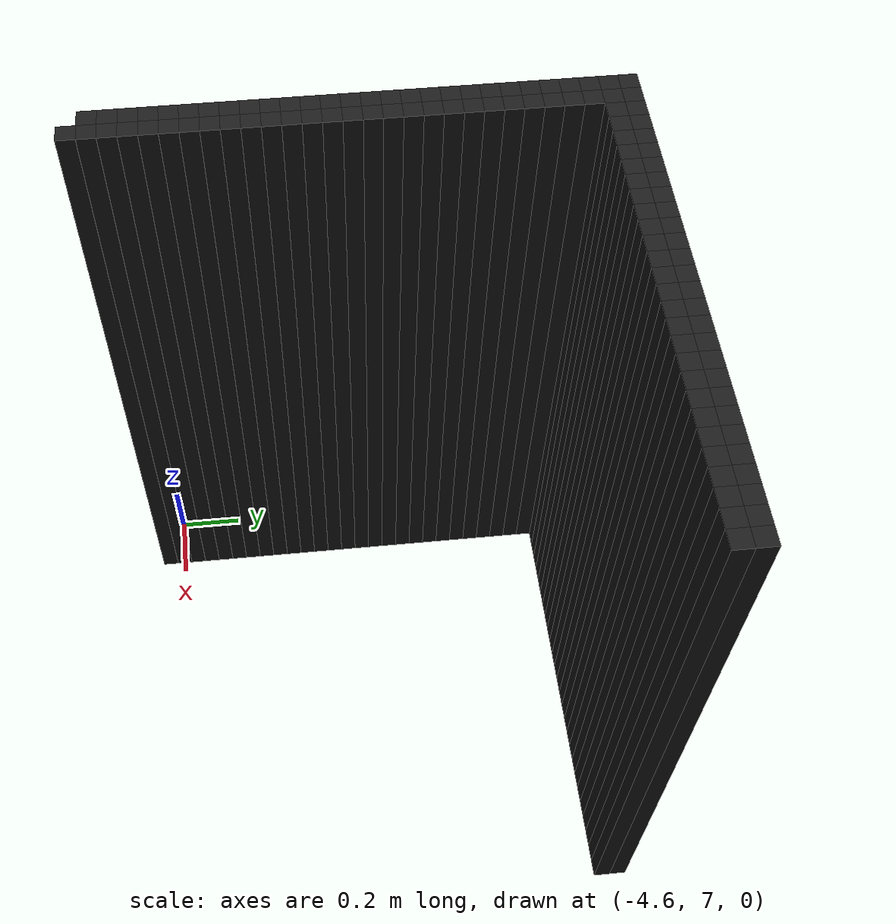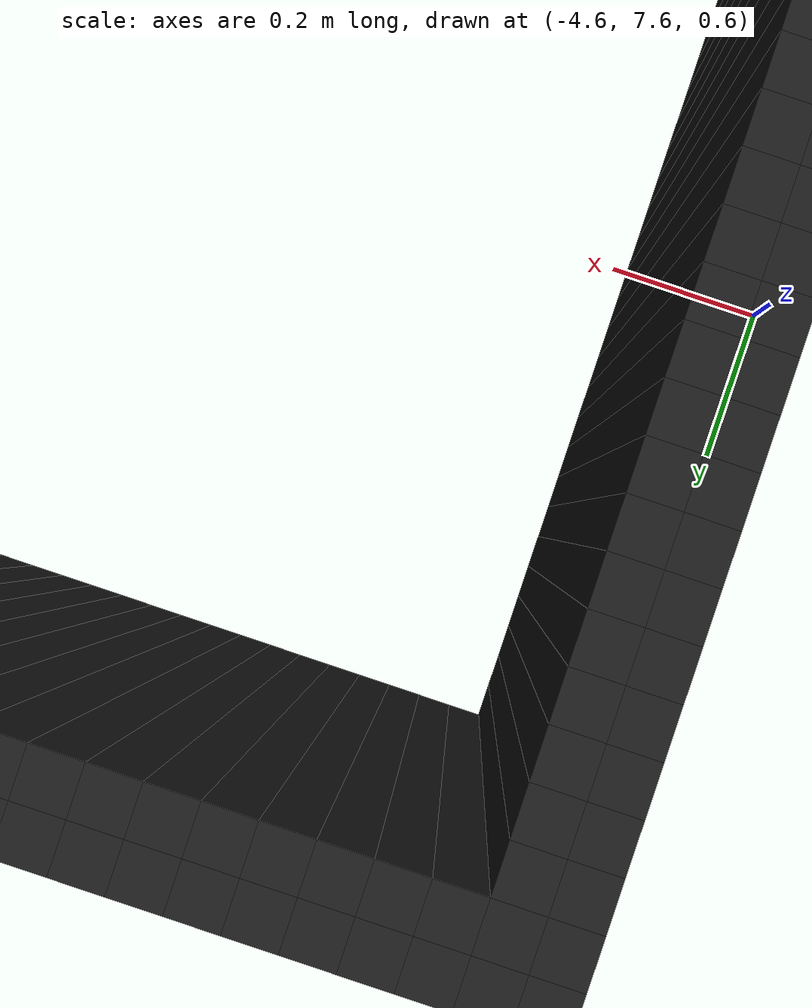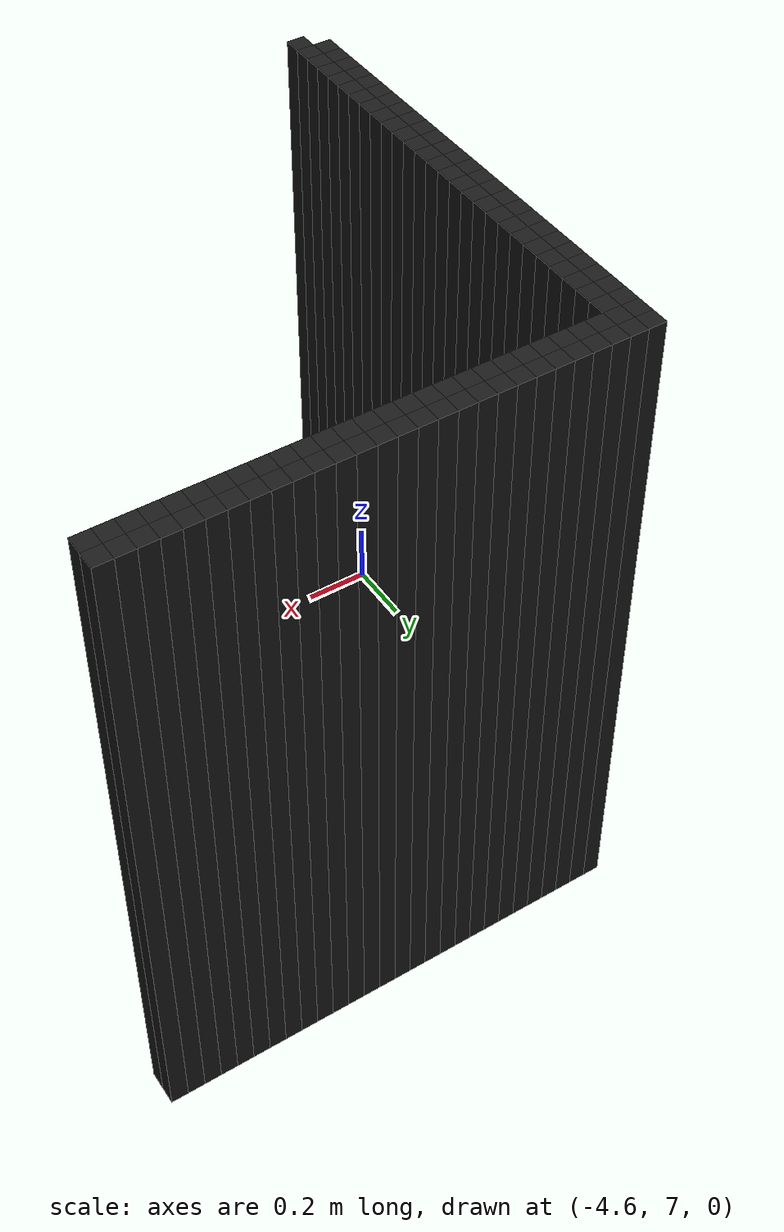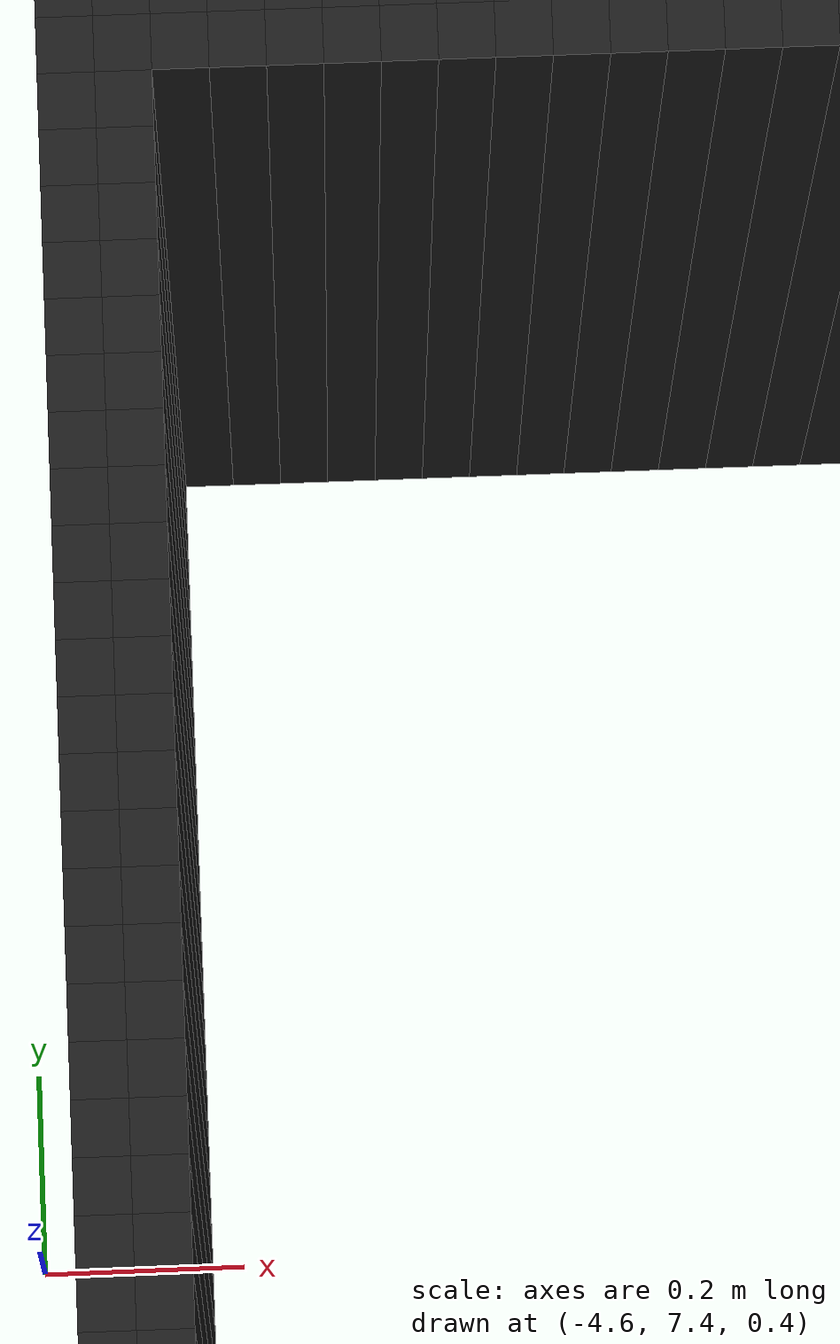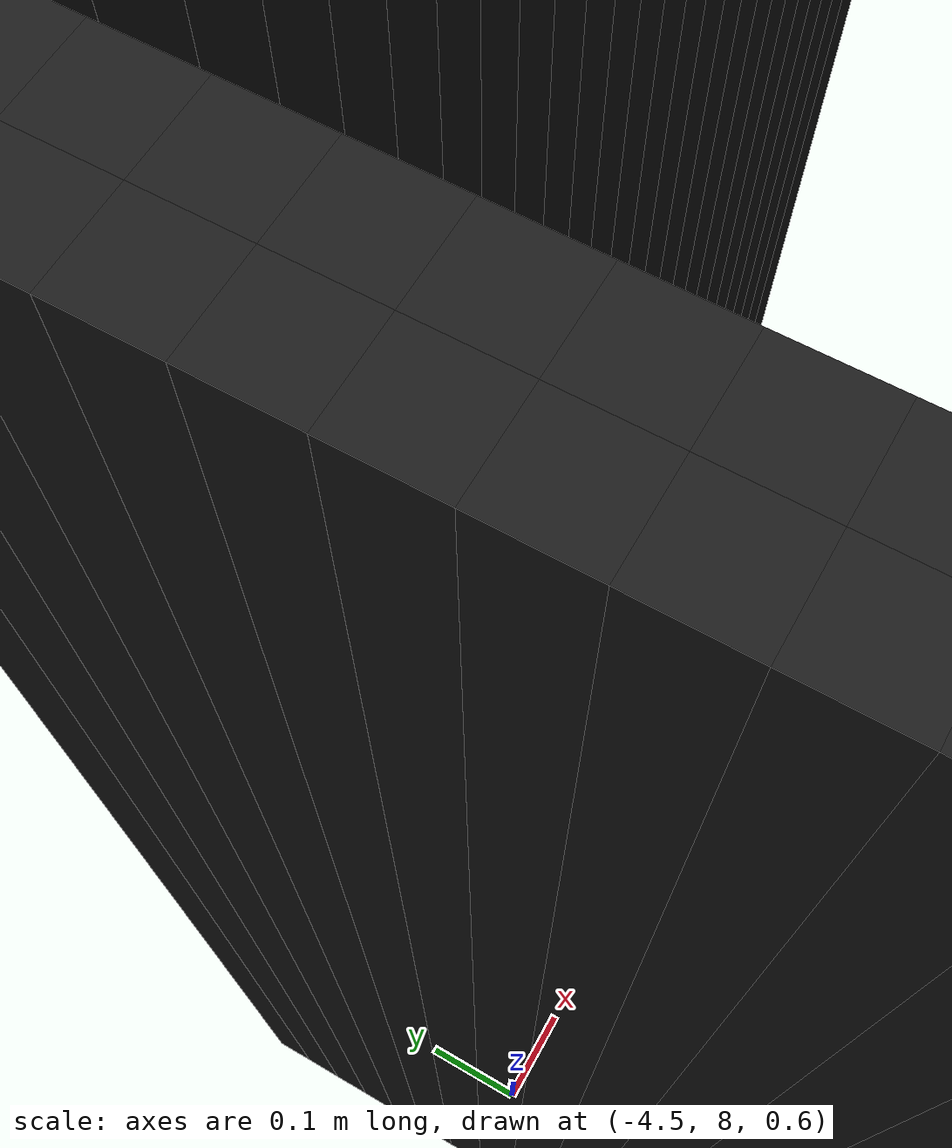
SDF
<sdf version="1.6">
 <model name="obstacle_0_0">
  <pose>-4.51 8.350000000000001 1.0 0 0 0</pose>
  <static>true</static>
  <link name="box_link">
   <collision name="box_collision"><geometry><box><size>0.05 0.05 2.0</size></box></geometry></collision>
   <visual name="box_visual">
    <geometry><box><size>0.05 0.05 2.0</size></box></geometry>
    <material><ambient>0 0 0 1</ambient><diffuse>0.1 0.1 0.1 1</diffuse></material>
   </visual>
  </link>
 </model>
 <model name="obstacle_1_0">
  <pose>-4.46 8.350000000000001 1.0 0 0 0</pose>
  <static>true</static>
  <link name="box_link">
   <collision name="box_collision"><geometry><box><size>0.05 0.05 2.0</size></box></geometry></collision>
   <visual name="box_visual">
    <geometry><box><size>0.05 0.05 2.0</size></box></geometry>
    <material><ambient>0 0 0 1</ambient><diffuse>0.1 0.1 0.1 1</diffuse></material>
   </visual>
  </link>
 </model>
 <model name="obstacle_2_0">
  <pose>-4.41 8.350000000000001 1.0 0 0 0</pose>
  <static>true</static>
  <link name="box_link">
   <collision name="box_collision"><geometry><box><size>0.05 0.05 2.0</size></box></geometry></collision>
   <visual name="box_visual">
    <geometry><box><size>0.05 0.05 2.0</size></box></geometry>
    <material><ambient>0 0 0 1</ambient><diffuse>0.1 0.1 0.1 1</diffuse></material>
   </visual>
  </link>
 </model>
 <model name="obstacle_3_0">
  <pose>-4.359999999999999 8.350000000000001 1.0 0 0 0</pose>
  <static>true</static>
  <link name="box_link">
   <collision name="box_collision"><geometry><box><size>0.05 0.05 2.0</size></box></geometry></collision>
   <visual name="box_visual">
    <geometry><box><size>0.05 0.05 2.0</size></box></geometry>
    <material><ambient>0 0 0 1</ambient><diffuse>0.1 0.1 0.1 1</diffuse></material>
   </visual>
  </link>
 </model>
 <model name="obstacle_4_0">
  <pose>-4.31 8.350000000000001 1.0 0 0 0</pose>
  <static>true</static>
  <link name="box_link">
   <collision name="box_collision"><geometry><box><size>0.05 0.05 2.0</size></box></geometry></collision>
   <visual name="box_visual">
    <geometry><box><size>0.05 0.05 2.0</size></box></geometry>
    <material><ambient>0 0 0 1</ambient><diffuse>0.1 0.1 0.1 1</diffuse></material>
   </visual>
  </link>
 </model>
 <model name="obstacle_5_0">
  <pose>-4.26 8.350000000000001 1.0 0 0 0</pose>
  <static>true</static>
  <link name="box_link">
   <collision name="box_collision"><geometry><box><size>0.05 0.05 2.0</size></box></geometry></collision>
   <visual name="box_visual">
    <geometry><box><size>0.05 0.05 2.0</size></box></geometry>
    <material><ambient>0 0 0 1</ambient><diffuse>0.1 0.1 0.1 1</diffuse></material>
   </visual>
  </link>
 </model>
 <model name="obstacle_6_0">
  <pose>-4.21 8.350000000000001 1.0 0 0 0</pose>
  <static>true</static>
  <link name="box_link">
   <collision name="box_collision"><geometry><box><size>0.05 0.05 2.0</size></box></geometry></collision>
   <visual name="box_visual">
    <geometry><box><size>0.05 0.05 2.0</size></box></geometry>
    <material><ambient>0 0 0 1</ambient><diffuse>0.1 0.1 0.1 1</diffuse></material>
   </visual>
  </link>
 </model>
 <model name="obstacle_7_0">
  <pose>-4.16 8.350000000000001 1.0 0 0 0</pose>
  <static>true</static>
  <link name="box_link">
   <collision name="box_collision"><geometry><box><size>0.05 0.05 2.0</size></box></geometry></collision>
   <visual name="box_visual">
    <geometry><box><size>0.05 0.05 2.0</size></box></geometry>
    <material><ambient>0 0 0 1</ambient><diffuse>0.1 0.1 0.1 1</diffuse></material>
   </visual>
  </link>
 </model>
 <model name="obstacle_8_0">
  <pose>-4.109999999999999 8.350000000000001 1.0 0 0 0</pose>
  <static>true</static>
  <link name="box_link">
   <collision name="box_collision"><geometry><box><size>0.05 0.05 2.0</size></box></geometry></collision>
   <visual name="box_visual">
    <geometry><box><size>0.05 0.05 2.0</size></box></geometry>
    <material><ambient>0 0 0 1</ambient><diffuse>0.1 0.1 0.1 1</diffuse></material>
   </visual>
  </link>
 </model>
 <model name="obstacle_9_0">
  <pose>-4.06 8.350000000000001 1.0 0 0 0</pose>
  <static>true</static>
  <link name="box_link">
   <collision name="box_collision"><geometry><box><size>0.05 0.05 2.0</size></box></geometry></collision>
   <visual name="box_visual">
    <geometry><box><size>0.05 0.05 2.0</size></box></geometry>
    <material><ambient>0 0 0 1</ambient><diffuse>0.1 0.1 0.1 1</diffuse></material>
   </visual>
  </link>
 </model>
 <model name="obstacle_10_0">
  <pose>-4.01 8.350000000000001 1.0 0 0 0</pose>
  <static>true</static>
  <link name="box_link">
   <collision name="box_collision"><geometry><box><size>0.05 0.05 2.0</size></box></geometry></collision>
   <visual name="box_visual">
    <geometry><box><size>0.05 0.05 2.0</size></box></geometry>
    <material><ambient>0 0 0 1</ambient><diffuse>0.1 0.1 0.1 1</diffuse></material>
   </visual>
  </link>
 </model>
 <model name="obstacle_11_0">
  <pose>-3.96 8.350000000000001 1.0 0 0 0</pose>
  <static>true</static>
  <link name="box_link">
   <collision name="box_collision"><geometry><box><size>0.05 0.05 2.0</size></box></geometry></collision>
   <visual name="box_visual">
    <geometry><box><size>0.05 0.05 2.0</size></box></geometry>
    <material><ambient>0 0 0 1</ambient><diffuse>0.1 0.1 0.1 1</diffuse></material>
   </visual>
  </link>
 </model>
 <model name="obstacle_12_0">
  <pose>-3.9099999999999997 8.350000000000001 1.0 0 0 0</pose>
  <static>true</static>
  <link name="box_link">
   <collision name="box_collision"><geometry><box><size>0.05 0.05 2.0</size></box></geometry></collision>
   <visual name="box_visual">
    <geometry><box><size>0.05 0.05 2.0</size></box></geometry>
    <material><ambient>0 0 0 1</ambient><diffuse>0.1 0.1 0.1 1</diffuse></material>
   </visual>
  </link>
 </model>
 <model name="obstacle_13_0">
  <pose>-3.86 8.350000000000001 1.0 0 0 0</pose>
  <static>true</static>
  <link name="box_link">
   <collision name="box_collision"><geometry><box><size>0.05 0.05 2.0</size></box></geometry></collision>
   <visual name="box_visual">
    <geometry><box><size>0.05 0.05 2.0</size></box></geometry>
    <material><ambient>0 0 0 1</ambient><diffuse>0.1 0.1 0.1 1</diffuse></material>
   </visual>
  </link>
 </model>
 <model name="obstacle_14_0">
  <pose>-3.8099999999999996 8.350000000000001 1.0 0 0 0</pose>
  <static>true</static>
  <link name="box_link">
   <collision name="box_collision"><geometry><box><size>0.05 0.05 2.0</size></box></geometry></collision>
   <visual name="box_visual">
    <geometry><box><size>0.05 0.05 2.0</size></box></geometry>
    <material><ambient>0 0 0 1</ambient><diffuse>0.1 0.1 0.1 1</diffuse></material>
   </visual>
  </link>
 </model>
 <model name="obstacle_15_0">
  <pose>-3.76 8.350000000000001 1.0 0 0 0</pose>
  <static>true</static>
  <link name="box_link">
   <collision name="box_collision"><geometry><box><size>0.05 0.05 2.0</size></box></geometry></collision>
   <visual name="box_visual">
    <geometry><box><size>0.05 0.05 2.0</size></box></geometry>
    <material><ambient>0 0 0 1</ambient><diffuse>0.1 0.1 0.1 1</diffuse></material>
   </visual>
  </link>
 </model>
 <model name="obstacle_16_0">
  <pose>-3.71 8.350000000000001 1.0 0 0 0</pose>
  <static>true</static>
  <link name="box_link">
   <collision name="box_collision"><geometry><box><size>0.05 0.05 2.0</size></box></geometry></collision>
   <visual name="box_visual">
    <geometry><box><size>0.05 0.05 2.0</size></box></geometry>
    <material><ambient>0 0 0 1</ambient><diffuse>0.1 0.1 0.1 1</diffuse></material>
   </visual>
  </link>
 </model>
 <model name="obstacle_17_0">
  <pose>-3.6599999999999997 8.350000000000001 1.0 0 0 0</pose>
  <static>true</static>
  <link name="box_link">
   <collision name="box_collision"><geometry><box><size>0.05 0.05 2.0</size></box></geometry></collision>
   <visual name="box_visual">
    <geometry><box><size>0.05 0.05 2.0</size></box></geometry>
    <material><ambient>0 0 0 1</ambient><diffuse>0.1 0.1 0.1 1</diffuse></material>
   </visual>
  </link>
 </model>
 <model name="obstacle_18_0">
  <pose>-3.61 8.350000000000001 1.0 0 0 0</pose>
  <static>true</static>
  <link name="box_link">
   <collision name="box_collision"><geometry><box><size>0.05 0.05 2.0</size></box></geometry></collision>
   <visual name="box_visual">
    <geometry><box><size>0.05 0.05 2.0</size></box></geometry>
    <material><ambient>0 0 0 1</ambient><diffuse>0.1 0.1 0.1 1</diffuse></material>
   </visual>
  </link>
 </model>
 <model name="obstacle_19_0">
  <pose>-3.5599999999999996 8.350000000000001 1.0 0 0 0</pose>
  <static>true</static>
  <link name="box_link">
   <collision name="box_collision"><geometry><box><size>0.05 0.05 2.0</size></box></geometry></collision>
   <visual name="box_visual">
    <geometry><box><size>0.05 0.05 2.0</size></box></geometry>
    <material><ambient>0 0 0 1</ambient><diffuse>0.1 0.1 0.1 1</diffuse></material>
   </visual>
  </link>
 </model>
 <model name="obstacle_20_0">
  <pose>-3.51 8.350000000000001 1.0 0 0 0</pose>
  <static>true</static>
  <link name="box_link">
   <collision name="box_collision"><geometry><box><size>0.05 0.05 2.0</size></box></geometry></collision>
   <visual name="box_visual">
    <geometry><box><size>0.05 0.05 2.0</size></box></geometry>
    <material><ambient>0 0 0 1</ambient><diffuse>0.1 0.1 0.1 1</diffuse></material>
   </visual>
  </link>
 </model>
 <model name="obstacle_21_0">
  <pose>-3.46 8.350000000000001 1.0 0 0 0</pose>
  <static>true</static>
  <link name="box_link">
   <collision name="box_collision"><geometry><box><size>0.05 0.05 2.0</size></box></geometry></collision>
   <visual name="box_visual">
    <geometry><box><size>0.05 0.05 2.0</size></box></geometry>
    <material><ambient>0 0 0 1</ambient><diffuse>0.1 0.1 0.1 1</diffuse></material>
   </visual>
  </link>
 </model>
 <model name="obstacle_22_0">
  <pose>-3.4099999999999997 8.350000000000001 1.0 0 0 0</pose>
  <static>true</static>
  <link name="box_link">
   <collision name="box_collision"><geometry><box><size>0.05 0.05 2.0</size></box></geometry></collision>
   <visual name="box_visual">
    <geometry><box><size>0.05 0.05 2.0</size></box></geometry>
    <material><ambient>0 0 0 1</ambient><diffuse>0.1 0.1 0.1 1</diffuse></material>
   </visual>
  </link>
 </model>
 <model name="obstacle_23_0">
  <pose>-3.3599999999999994 8.350000000000001 1.0 0 0 0</pose>
  <static>true</static>
  <link name="box_link">
   <collision name="box_collision"><geometry><box><size>0.05 0.05 2.0</size></box></geometry></collision>
   <visual name="box_visual">
    <geometry><box><size>0.05 0.05 2.0</size></box></geometry>
    <material><ambient>0 0 0 1</ambient><diffuse>0.1 0.1 0.1 1</diffuse></material>
   </visual>
  </link>
 </model>
 <model name="obstacle_24_0">
  <pose>-3.3099999999999996 8.350000000000001 1.0 0 0 0</pose>
  <static>true</static>
  <link name="box_link">
   <collision name="box_collision"><geometry><box><size>0.05 0.05 2.0</size></box></geometry></collision>
   <visual name="box_visual">
    <geometry><box><size>0.05 0.05 2.0</size></box></geometry>
    <material><ambient>0 0 0 1</ambient><diffuse>0.1 0.1 0.1 1</diffuse></material>
   </visual>
  </link>
 </model>
 <model name="obstacle_25_0">
  <pose>-3.26 8.350000000000001 1.0 0 0 0</pose>
  <static>true</static>
  <link name="box_link">
   <collision name="box_collision"><geometry><box><size>0.05 0.05 2.0</size></box></geometry></collision>
   <visual name="box_visual">
    <geometry><box><size>0.05 0.05 2.0</size></box></geometry>
    <material><ambient>0 0 0 1</ambient><diffuse>0.1 0.1 0.1 1</diffuse></material>
   </visual>
  </link>
 </model>
 <model name="obstacle_26_0">
  <pose>-3.21 8.350000000000001 1.0 0 0 0</pose>
  <static>true</static>
  <link name="box_link">
   <collision name="box_collision"><geometry><box><size>0.05 0.05 2.0</size></box></geometry></collision>
   <visual name="box_visual">
    <geometry><box><size>0.05 0.05 2.0</size></box></geometry>
    <material><ambient>0 0 0 1</ambient><diffuse>0.1 0.1 0.1 1</diffuse></material>
   </visual>
  </link>
 </model>
 <model name="obstacle_27_0">
  <pose>-3.1599999999999997 8.350000000000001 1.0 0 0 0</pose>
  <static>true</static>
  <link name="box_link">
   <collision name="box_collision"><geometry><box><size>0.05 0.05 2.0</size></box></geometry></collision>
   <visual name="box_visual">
    <geometry><box><size>0.05 0.05 2.0</size></box></geometry>
    <material><ambient>0 0 0 1</ambient><diffuse>0.1 0.1 0.1 1</diffuse></material>
   </visual>
  </link>
 </model>
 <model name="obstacle_0_1">
  <pose>-4.51 8.3 1.0 0 0 0</pose>
  <static>true</static>
  <link name="box_link">
   <collision name="box_collision"><geometry><box><size>0.05 0.05 2.0</size></box></geometry></collision>
   <visual name="box_visual">
    <geometry><box><size>0.05 0.05 2.0</size></box></geometry>
    <material><ambient>0 0 0 1</ambient><diffuse>0.1 0.1 0.1 1</diffuse></material>
   </visual>
  </link>
 </model>
 <model name="obstacle_1_1">
  <pose>-4.46 8.3 1.0 0 0 0</pose>
  <static>true</static>
  <link name="box_link">
   <collision name="box_collision"><geometry><box><size>0.05 0.05 2.0</size></box></geometry></collision>
   <visual name="box_visual">
    <geometry><box><size>0.05 0.05 2.0</size></box></geometry>
    <material><ambient>0 0 0 1</ambient><diffuse>0.1 0.1 0.1 1</diffuse></material>
   </visual>
  </link>
 </model>
 <model name="obstacle_2_1">
  <pose>-4.41 8.3 1.0 0 0 0</pose>
  <static>true</static>
  <link name="box_link">
   <collision name="box_collision"><geometry><box><size>0.05 0.05 2.0</size></box></geometry></collision>
   <visual name="box_visual">
    <geometry><box><size>0.05 0.05 2.0</size></box></geometry>
    <material><ambient>0 0 0 1</ambient><diffuse>0.1 0.1 0.1 1</diffuse></material>
   </visual>
  </link>
 </model>
 <model name="obstacle_3_1">
  <pose>-4.359999999999999 8.3 1.0 0 0 0</pose>
  <static>true</static>
  <link name="box_link">
   <collision name="box_collision"><geometry><box><size>0.05 0.05 2.0</size></box></geometry></collision>
   <visual name="box_visual">
    <geometry><box><size>0.05 0.05 2.0</size></box></geometry>
    <material><ambient>0 0 0 1</ambient><diffuse>0.1 0.1 0.1 1</diffuse></material>
   </visual>
  </link>
 </model>
 <model name="obstacle_4_1">
  <pose>-4.31 8.3 1.0 0 0 0</pose>
  <static>true</static>
  <link name="box_link">
   <collision name="box_collision"><geometry><box><size>0.05 0.05 2.0</size></box></geometry></collision>
   <visual name="box_visual">
    <geometry><box><size>0.05 0.05 2.0</size></box></geometry>
    <material><ambient>0 0 0 1</ambient><diffuse>0.1 0.1 0.1 1</diffuse></material>
   </visual>
  </link>
 </model>
 <model name="obstacle_5_1">
  <pose>-4.26 8.3 1.0 0 0 0</pose>
  <static>true</static>
  <link name="box_link">
   <collision name="box_collision"><geometry><box><size>0.05 0.05 2.0</size></box></geometry></collision>
   <visual name="box_visual">
    <geometry><box><size>0.05 0.05 2.0</size></box></geometry>
    <material><ambient>0 0 0 1</ambient><diffuse>0.1 0.1 0.1 1</diffuse></material>
   </visual>
  </link>
 </model>
 <model name="obstacle_6_1">
  <pose>-4.21 8.3 1.0 0 0 0</pose>
  <static>true</static>
  <link name="box_link">
   <collision name="box_collision"><geometry><box><size>0.05 0.05 2.0</size></box></geometry></collision>
   <visual name="box_visual">
    <geometry><box><size>0.05 0.05 2.0</size></box></geometry>
    <material><ambient>0 0 0 1</ambient><diffuse>0.1 0.1 0.1 1</diffuse></material>
   </visual>
  </link>
 </model>
 <model name="obstacle_7_1">
  <pose>-4.16 8.3 1.0 0 0 0</pose>
  <static>true</static>
  <link name="box_link">
   <collision name="box_collision"><geometry><box><size>0.05 0.05 2.0</size></box></geometry></collision>
   <visual name="box_visual">
    <geometry><box><size>0.05 0.05 2.0</size></box></geometry>
    <material><ambient>0 0 0 1</ambient><diffuse>0.1 0.1 0.1 1</diffuse></material>
   </visual>
  </link>
 </model>
 <model name="obstacle_8_1">
  <pose>-4.109999999999999 8.3 1.0 0 0 0</pose>
  <static>true</static>
  <link name="box_link">
   <collision name="box_collision"><geometry><box><size>0.05 0.05 2.0</size></box></geometry></collision>
   <visual name="box_visual">
    <geometry><box><size>0.05 0.05 2.0</size></box></geometry>
    <material><ambient>0 0 0 1</ambient><diffuse>0.1 0.1 0.1 1</diffuse></material>
   </visual>
  </link>
 </model>
 <model name="obstacle_9_1">
  <pose>-4.06 8.3 1.0 0 0 0</pose>
  <static>true</static>
  <link name="box_link">
   <collision name="box_collision"><geometry><box><size>0.05 0.05 2.0</size></box></geometry></collision>
   <visual name="box_visual">
    <geometry><box><size>0.05 0.05 2.0</size></box></geometry>
    <material><ambient>0 0 0 1</ambient><diffuse>0.1 0.1 0.1 1</diffuse></material>
   </visual>
  </link>
 </model>
 <model name="obstacle_10_1">
  <pose>-4.01 8.3 1.0 0 0 0</pose>
  <static>true</static>
  <link name="box_link">
   <collision name="box_collision"><geometry><box><size>0.05 0.05 2.0</size></box></geometry></collision>
   <visual name="box_visual">
    <geometry><box><size>0.05 0.05 2.0</size></box></geometry>
    <material><ambient>0 0 0 1</ambient><diffuse>0.1 0.1 0.1 1</diffuse></material>
   </visual>
  </link>
 </model>
 <model name="obstacle_11_1">
  <pose>-3.96 8.3 1.0 0 0 0</pose>
  <static>true</static>
  <link name="box_link">
   <collision name="box_collision"><geometry><box><size>0.05 0.05 2.0</size></box></geometry></collision>
   <visual name="box_visual">
    <geometry><box><size>0.05 0.05 2.0</size></box></geometry>
    <material><ambient>0 0 0 1</ambient><diffuse>0.1 0.1 0.1 1</diffuse></material>
   </visual>
  </link>
 </model>
 <model name="obstacle_12_1">
  <pose>-3.9099999999999997 8.3 1.0 0 0 0</pose>
  <static>true</static>
  <link name="box_link">
   <collision name="box_collision"><geometry><box><size>0.05 0.05 2.0</size></box></geometry></collision>
   <visual name="box_visual">
    <geometry><box><size>0.05 0.05 2.0</size></box></geometry>
    <material><ambient>0 0 0 1</ambient><diffuse>0.1 0.1 0.1 1</diffuse></material>
   </visual>
  </link>
 </model>
 <model name="obstacle_13_1">
  <pose>-3.86 8.3 1.0 0 0 0</pose>
  <static>true</static>
  <link name="box_link">
   <collision name="box_collision"><geometry><box><size>0.05 0.05 2.0</size></box></geometry></collision>
   <visual name="box_visual">
    <geometry><box><size>0.05 0.05 2.0</size></box></geometry>
    <material><ambient>0 0 0 1</ambient><diffuse>0.1 0.1 0.1 1</diffuse></material>
   </visual>
  </link>
 </model>
 <model name="obstacle_14_1">
  <pose>-3.8099999999999996 8.3 1.0 0 0 0</pose>
  <static>true</static>
  <link name="box_link">
   <collision name="box_collision"><geometry><box><size>0.05 0.05 2.0</size></box></geometry></collision>
   <visual name="box_visual">
    <geometry><box><size>0.05 0.05 2.0</size></box></geometry>
    <material><ambient>0 0 0 1</ambient><diffuse>0.1 0.1 0.1 1</diffuse></material>
   </visual>
  </link>
 </model>
 <model name="obstacle_15_1">
  <pose>-3.76 8.3 1.0 0 0 0</pose>
  <static>true</static>
  <link name="box_link">
   <collision name="box_collision"><geometry><box><size>0.05 0.05 2.0</size></box></geometry></collision>
   <visual name="box_visual">
    <geometry><box><size>0.05 0.05 2.0</size></box></geometry>
    <material><ambient>0 0 0 1</ambient><diffuse>0.1 0.1 0.1 1</diffuse></material>
   </visual>
  </link>
 </model>
 <model name="obstacle_16_1">
  <pose>-3.71 8.3 1.0 0 0 0</pose>
  <static>true</static>
  <link name="box_link">
   <collision name="box_collision"><geometry><box><size>0.05 0.05 2.0</size></box></geometry></collision>
   <visual name="box_visual">
    <geometry><box><size>0.05 0.05 2.0</size></box></geometry>
    <material><ambient>0 0 0 1</ambient><diffuse>0.1 0.1 0.1 1</diffuse></material>
   </visual>
  </link>
 </model>
 <model name="obstacle_17_1">
  <pose>-3.6599999999999997 8.3 1.0 0 0 0</pose>
  <static>true</static>
  <link name="box_link">
   <collision name="box_collision"><geometry><box><size>0.05 0.05 2.0</size></box></geometry></collision>
   <visual name="box_visual">
    <geometry><box><size>0.05 0.05 2.0</size></box></geometry>
    <material><ambient>0 0 0 1</ambient><diffuse>0.1 0.1 0.1 1</diffuse></material>
   </visual>
  </link>
 </model>
 <model name="obstacle_18_1">
  <pose>-3.61 8.3 1.0 0 0 0</pose>
  <static>true</static>
  <link name="box_link">
   <collision name="box_collision"><geometry><box><size>0.05 0.05 2.0</size></box></geometry></collision>
   <visual name="box_visual">
    <geometry><box><size>0.05 0.05 2.0</size></box></geometry>
    <material><ambient>0 0 0 1</ambient><diffuse>0.1 0.1 0.1 1</diffuse></material>
   </visual>
  </link>
 </model>
 <model name="obstacle_19_1">
  <pose>-3.5599999999999996 8.3 1.0 0 0 0</pose>
  <static>true</static>
  <link name="box_link">
   <collision name="box_collision"><geometry><box><size>0.05 0.05 2.0</size></box></geometry></collision>
   <visual name="box_visual">
    <geometry><box><size>0.05 0.05 2.0</size></box></geometry>
    <material><ambient>0 0 0 1</ambient><diffuse>0.1 0.1 0.1 1</diffuse></material>
   </visual>
  </link>
 </model>
 <model name="obstacle_20_1">
  <pose>-3.51 8.3 1.0 0 0 0</pose>
  <static>true</static>
  <link name="box_link">
   <collision name="box_collision"><geometry><box><size>0.05 0.05 2.0</size></box></geometry></collision>
   <visual name="box_visual">
    <geometry><box><size>0.05 0.05 2.0</size></box></geometry>
    <material><ambient>0 0 0 1</ambient><diffuse>0.1 0.1 0.1 1</diffuse></material>
   </visual>
  </link>
 </model>
 <model name="obstacle_21_1">
  <pose>-3.46 8.3 1.0 0 0 0</pose>
  <static>true</static>
  <link name="box_link">
   <collision name="box_collision"><geometry><box><size>0.05 0.05 2.0</size></box></geometry></collision>
   <visual name="box_visual">
    <geometry><box><size>0.05 0.05 2.0</size></box></geometry>
    <material><ambient>0 0 0 1</ambient><diffuse>0.1 0.1 0.1 1</diffuse></material>
   </visual>
  </link>
 </model>
 <model name="obstacle_22_1">
  <pose>-3.4099999999999997 8.3 1.0 0 0 0</pose>
  <static>true</static>
  <link name="box_link">
   <collision name="box_collision"><geometry><box><size>0.05 0.05 2.0</size></box></geometry></collision>
   <visual name="box_visual">
    <geometry><box><size>0.05 0.05 2.0</size></box></geometry>
    <material><ambient>0 0 0 1</ambient><diffuse>0.1 0.1 0.1 1</diffuse></material>
   </visual>
  </link>
 </model>
 <model name="obstacle_23_1">
  <pose>-3.3599999999999994 8.3 1.0 0 0 0</pose>
  <static>true</static>
  <link name="box_link">
   <collision name="box_collision"><geometry><box><size>0.05 0.05 2.0</size></box></geometry></collision>
   <visual name="box_visual">
    <geometry><box><size>0.05 0.05 2.0</size></box></geometry>
    <material><ambient>0 0 0 1</ambient><diffuse>0.1 0.1 0.1 1</diffuse></material>
   </visual>
  </link>
 </model>
 <model name="obstacle_24_1">
  <pose>-3.3099999999999996 8.3 1.0 0 0 0</pose>
  <static>true</static>
  <link name="box_link">
   <collision name="box_collision"><geometry><box><size>0.05 0.05 2.0</size></box></geometry></collision>
   <visual name="box_visual">
    <geometry><box><size>0.05 0.05 2.0</size></box></geometry>
    <material><ambient>0 0 0 1</ambient><diffuse>0.1 0.1 0.1 1</diffuse></material>
   </visual>
  </link>
 </model>
 <model name="obstacle_25_1">
  <pose>-3.26 8.3 1.0 0 0 0</pose>
  <static>true</static>
  <link name="box_link">
   <collision name="box_collision"><geometry><box><size>0.05 0.05 2.0</size></box></geometry></collision>
   <visual name="box_visual">
    <geometry><box><size>0.05 0.05 2.0</size></box></geometry>
    <material><ambient>0 0 0 1</ambient><diffuse>0.1 0.1 0.1 1</diffuse></material>
   </visual>
  </link>
 </model>
 <model name="obstacle_26_1">
  <pose>-3.21 8.3 1.0 0 0 0</pose>
  <static>true</static>
  <link name="box_link">
   <collision name="box_collision"><geometry><box><size>0.05 0.05 2.0</size></box></geometry></collision>
   <visual name="box_visual">
    <geometry><box><size>0.05 0.05 2.0</size></box></geometry>
    <material><ambient>0 0 0 1</ambient><diffuse>0.1 0.1 0.1 1</diffuse></material>
   </visual>
  </link>
 </model>
 <model name="obstacle_27_1">
  <pose>-3.1599999999999997 8.3 1.0 0 0 0</pose>
  <static>true</static>
  <link name="box_link">
   <collision name="box_collision"><geometry><box><size>0.05 0.05 2.0</size></box></geometry></collision>
   <visual name="box_visual">
    <geometry><box><size>0.05 0.05 2.0</size></box></geometry>
    <material><ambient>0 0 0 1</ambient><diffuse>0.1 0.1 0.1 1</diffuse></material>
   </visual>
  </link>
 </model>
 <model name="obstacle_0_2">
  <pose>-4.51 8.25 1.0 0 0 0</pose>
  <static>true</static>
  <link name="box_link">
   <collision name="box_collision"><geometry><box><size>0.05 0.05 2.0</size></box></geometry></collision>
   <visual name="box_visual">
    <geometry><box><size>0.05 0.05 2.0</size></box></geometry>
    <material><ambient>0 0 0 1</ambient><diffuse>0.1 0.1 0.1 1</diffuse></material>
   </visual>
  </link>
 </model>
 <model name="obstacle_1_2">
  <pose>-4.46 8.25 1.0 0 0 0</pose>
  <static>true</static>
  <link name="box_link">
   <collision name="box_collision"><geometry><box><size>0.05 0.05 2.0</size></box></geometry></collision>
   <visual name="box_visual">
    <geometry><box><size>0.05 0.05 2.0</size></box></geometry>
    <material><ambient>0 0 0 1</ambient><diffuse>0.1 0.1 0.1 1</diffuse></material>
   </visual>
  </link>
 </model>
 <model name="obstacle_0_3">
  <pose>-4.51 8.2 1.0 0 0 0</pose>
  <static>true</static>
  <link name="box_link">
   <collision name="box_collision"><geometry><box><size>0.05 0.05 2.0</size></box></geometry></collision>
   <visual name="box_visual">
    <geometry><box><size>0.05 0.05 2.0</size></box></geometry>
    <material><ambient>0 0 0 1</ambient><diffuse>0.1 0.1 0.1 1</diffuse></material>
   </visual>
  </link>
 </model>
 <model name="obstacle_1_3">
  <pose>-4.46 8.2 1.0 0 0 0</pose>
  <static>true</static>
  <link name="box_link">
   <collision name="box_collision"><geometry><box><size>0.05 0.05 2.0</size></box></geometry></collision>
   <visual name="box_visual">
    <geometry><box><size>0.05 0.05 2.0</size></box></geometry>
    <material><ambient>0 0 0 1</ambient><diffuse>0.1 0.1 0.1 1</diffuse></material>
   </visual>
  </link>
 </model>
 <model name="obstacle_0_4">
  <pose>-4.51 8.150000000000002 1.0 0 0 0</pose>
  <static>true</static>
  <link name="box_link">
   <collision name="box_collision"><geometry><box><size>0.05 0.05 2.0</size></box></geometry></collision>
   <visual name="box_visual">
    <geometry><box><size>0.05 0.05 2.0</size></box></geometry>
    <material><ambient>0 0 0 1</ambient><diffuse>0.1 0.1 0.1 1</diffuse></material>
   </visual>
  </link>
 </model>
 <model name="obstacle_1_4">
  <pose>-4.46 8.150000000000002 1.0 0 0 0</pose>
  <static>true</static>
  <link name="box_link">
   <collision name="box_collision"><geometry><box><size>0.05 0.05 2.0</size></box></geometry></collision>
   <visual name="box_visual">
    <geometry><box><size>0.05 0.05 2.0</size></box></geometry>
    <material><ambient>0 0 0 1</ambient><diffuse>0.1 0.1 0.1 1</diffuse></material>
   </visual>
  </link>
 </model>
 <model name="obstacle_0_5">
  <pose>-4.51 8.100000000000001 1.0 0 0 0</pose>
  <static>true</static>
  <link name="box_link">
   <collision name="box_collision"><geometry><box><size>0.05 0.05 2.0</size></box></geometry></collision>
   <visual name="box_visual">
    <geometry><box><size>0.05 0.05 2.0</size></box></geometry>
    <material><ambient>0 0 0 1</ambient><diffuse>0.1 0.1 0.1 1</diffuse></material>
   </visual>
  </link>
 </model>
 <model name="obstacle_1_5">
  <pose>-4.46 8.100000000000001 1.0 0 0 0</pose>
  <static>true</static>
  <link name="box_link">
   <collision name="box_collision"><geometry><box><size>0.05 0.05 2.0</size></box></geometry></collision>
   <visual name="box_visual">
    <geometry><box><size>0.05 0.05 2.0</size></box></geometry>
    <material><ambient>0 0 0 1</ambient><diffuse>0.1 0.1 0.1 1</diffuse></material>
   </visual>
  </link>
 </model>
 <model name="obstacle_0_6">
  <pose>-4.51 8.05 1.0 0 0 0</pose>
  <static>true</static>
  <link name="box_link">
   <collision name="box_collision"><geometry><box><size>0.05 0.05 2.0</size></box></geometry></collision>
   <visual name="box_visual">
    <geometry><box><size>0.05 0.05 2.0</size></box></geometry>
    <material><ambient>0 0 0 1</ambient><diffuse>0.1 0.1 0.1 1</diffuse></material>
   </visual>
  </link>
 </model>
 <model name="obstacle_1_6">
  <pose>-4.46 8.05 1.0 0 0 0</pose>
  <static>true</static>
  <link name="box_link">
   <collision name="box_collision"><geometry><box><size>0.05 0.05 2.0</size></box></geometry></collision>
   <visual name="box_visual">
    <geometry><box><size>0.05 0.05 2.0</size></box></geometry>
    <material><ambient>0 0 0 1</ambient><diffuse>0.1 0.1 0.1 1</diffuse></material>
   </visual>
  </link>
 </model>
 <model name="obstacle_0_7">
  <pose>-4.51 8.0 1.0 0 0 0</pose>
  <static>true</static>
  <link name="box_link">
   <collision name="box_collision"><geometry><box><size>0.05 0.05 2.0</size></box></geometry></collision>
   <visual name="box_visual">
    <geometry><box><size>0.05 0.05 2.0</size></box></geometry>
    <material><ambient>0 0 0 1</ambient><diffuse>0.1 0.1 0.1 1</diffuse></material>
   </visual>
  </link>
 </model>
 <model name="obstacle_1_7">
  <pose>-4.46 8.0 1.0 0 0 0</pose>
  <static>true</static>
  <link name="box_link">
   <collision name="box_collision"><geometry><box><size>0.05 0.05 2.0</size></box></geometry></collision>
   <visual name="box_visual">
    <geometry><box><size>0.05 0.05 2.0</size></box></geometry>
    <material><ambient>0 0 0 1</ambient><diffuse>0.1 0.1 0.1 1</diffuse></material>
   </visual>
  </link>
 </model>
 <model name="obstacle_0_8">
  <pose>-4.51 7.95 1.0 0 0 0</pose>
  <static>true</static>
  <link name="box_link">
   <collision name="box_collision"><geometry><box><size>0.05 0.05 2.0</size></box></geometry></collision>
   <visual name="box_visual">
    <geometry><box><size>0.05 0.05 2.0</size></box></geometry>
    <material><ambient>0 0 0 1</ambient><diffuse>0.1 0.1 0.1 1</diffuse></material>
   </visual>
  </link>
 </model>
 <model name="obstacle_1_8">
  <pose>-4.46 7.95 1.0 0 0 0</pose>
  <static>true</static>
  <link name="box_link">
   <collision name="box_collision"><geometry><box><size>0.05 0.05 2.0</size></box></geometry></collision>
   <visual name="box_visual">
    <geometry><box><size>0.05 0.05 2.0</size></box></geometry>
    <material><ambient>0 0 0 1</ambient><diffuse>0.1 0.1 0.1 1</diffuse></material>
   </visual>
  </link>
 </model>
 <model name="obstacle_0_9">
  <pose>-4.51 7.900000000000001 1.0 0 0 0</pose>
  <static>true</static>
  <link name="box_link">
   <collision name="box_collision"><geometry><box><size>0.05 0.05 2.0</size></box></geometry></collision>
   <visual name="box_visual">
    <geometry><box><size>0.05 0.05 2.0</size></box></geometry>
    <material><ambient>0 0 0 1</ambient><diffuse>0.1 0.1 0.1 1</diffuse></material>
   </visual>
  </link>
 </model>
 <model name="obstacle_1_9">
  <pose>-4.46 7.900000000000001 1.0 0 0 0</pose>
  <static>true</static>
  <link name="box_link">
   <collision name="box_collision"><geometry><box><size>0.05 0.05 2.0</size></box></geometry></collision>
   <visual name="box_visual">
    <geometry><box><size>0.05 0.05 2.0</size></box></geometry>
    <material><ambient>0 0 0 1</ambient><diffuse>0.1 0.1 0.1 1</diffuse></material>
   </visual>
  </link>
 </model>
 <model name="obstacle_0_10">
  <pose>-4.51 7.8500000000000005 1.0 0 0 0</pose>
  <static>true</static>
  <link name="box_link">
   <collision name="box_collision"><geometry><box><size>0.05 0.05 2.0</size></box></geometry></collision>
   <visual name="box_visual">
    <geometry><box><size>0.05 0.05 2.0</size></box></geometry>
    <material><ambient>0 0 0 1</ambient><diffuse>0.1 0.1 0.1 1</diffuse></material>
   </visual>
  </link>
 </model>
 <model name="obstacle_1_10">
  <pose>-4.46 7.8500000000000005 1.0 0 0 0</pose>
  <static>true</static>
  <link name="box_link">
   <collision name="box_collision"><geometry><box><size>0.05 0.05 2.0</size></box></geometry></collision>
   <visual name="box_visual">
    <geometry><box><size>0.05 0.05 2.0</size></box></geometry>
    <material><ambient>0 0 0 1</ambient><diffuse>0.1 0.1 0.1 1</diffuse></material>
   </visual>
  </link>
 </model>
 <model name="obstacle_0_11">
  <pose>-4.51 7.8 1.0 0 0 0</pose>
  <static>true</static>
  <link name="box_link">
   <collision name="box_collision"><geometry><box><size>0.05 0.05 2.0</size></box></geometry></collision>
   <visual name="box_visual">
    <geometry><box><size>0.05 0.05 2.0</size></box></geometry>
    <material><ambient>0 0 0 1</ambient><diffuse>0.1 0.1 0.1 1</diffuse></material>
   </visual>
  </link>
 </model>
 <model name="obstacle_1_11">
  <pose>-4.46 7.8 1.0 0 0 0</pose>
  <static>true</static>
  <link name="box_link">
   <collision name="box_collision"><geometry><box><size>0.05 0.05 2.0</size></box></geometry></collision>
   <visual name="box_visual">
    <geometry><box><size>0.05 0.05 2.0</size></box></geometry>
    <material><ambient>0 0 0 1</ambient><diffuse>0.1 0.1 0.1 1</diffuse></material>
   </visual>
  </link>
 </model>
 <model name="obstacle_0_12">
  <pose>-4.51 7.750000000000001 1.0 0 0 0</pose>
  <static>true</static>
  <link name="box_link">
   <collision name="box_collision"><geometry><box><size>0.05 0.05 2.0</size></box></geometry></collision>
   <visual name="box_visual">
    <geometry><box><size>0.05 0.05 2.0</size></box></geometry>
    <material><ambient>0 0 0 1</ambient><diffuse>0.1 0.1 0.1 1</diffuse></material>
   </visual>
  </link>
 </model>
 <model name="obstacle_1_12">
  <pose>-4.46 7.750000000000001 1.0 0 0 0</pose>
  <static>true</static>
  <link name="box_link">
   <collision name="box_collision"><geometry><box><size>0.05 0.05 2.0</size></box></geometry></collision>
   <visual name="box_visual">
    <geometry><box><size>0.05 0.05 2.0</size></box></geometry>
    <material><ambient>0 0 0 1</ambient><diffuse>0.1 0.1 0.1 1</diffuse></material>
   </visual>
  </link>
 </model>
 <model name="obstacle_0_13">
  <pose>-4.51 7.7 1.0 0 0 0</pose>
  <static>true</static>
  <link name="box_link">
   <collision name="box_collision"><geometry><box><size>0.05 0.05 2.0</size></box></geometry></collision>
   <visual name="box_visual">
    <geometry><box><size>0.05 0.05 2.0</size></box></geometry>
    <material><ambient>0 0 0 1</ambient><diffuse>0.1 0.1 0.1 1</diffuse></material>
   </visual>
  </link>
 </model>
 <model name="obstacle_1_13">
  <pose>-4.46 7.7 1.0 0 0 0</pose>
  <static>true</static>
  <link name="box_link">
   <collision name="box_collision"><geometry><box><size>0.05 0.05 2.0</size></box></geometry></collision>
   <visual name="box_visual">
    <geometry><box><size>0.05 0.05 2.0</size></box></geometry>
    <material><ambient>0 0 0 1</ambient><diffuse>0.1 0.1 0.1 1</diffuse></material>
   </visual>
  </link>
 </model>
 <model name="obstacle_0_14">
  <pose>-4.51 7.650000000000001 1.0 0 0 0</pose>
  <static>true</static>
  <link name="box_link">
   <collision name="box_collision"><geometry><box><size>0.05 0.05 2.0</size></box></geometry></collision>
   <visual name="box_visual">
    <geometry><box><size>0.05 0.05 2.0</size></box></geometry>
    <material><ambient>0 0 0 1</ambient><diffuse>0.1 0.1 0.1 1</diffuse></material>
   </visual>
  </link>
 </model>
 <model name="obstacle_1_14">
  <pose>-4.46 7.650000000000001 1.0 0 0 0</pose>
  <static>true</static>
  <link name="box_link">
   <collision name="box_collision"><geometry><box><size>0.05 0.05 2.0</size></box></geometry></collision>
   <visual name="box_visual">
    <geometry><box><size>0.05 0.05 2.0</size></box></geometry>
    <material><ambient>0 0 0 1</ambient><diffuse>0.1 0.1 0.1 1</diffuse></material>
   </visual>
  </link>
 </model>
 <model name="obstacle_0_15">
  <pose>-4.51 7.6000000000000005 1.0 0 0 0</pose>
  <static>true</static>
  <link name="box_link">
   <collision name="box_collision"><geometry><box><size>0.05 0.05 2.0</size></box></geometry></collision>
   <visual name="box_visual">
    <geometry><box><size>0.05 0.05 2.0</size></box></geometry>
    <material><ambient>0 0 0 1</ambient><diffuse>0.1 0.1 0.1 1</diffuse></material>
   </visual>
  </link>
 </model>
 <model name="obstacle_1_15">
  <pose>-4.46 7.6000000000000005 1.0 0 0 0</pose>
  <static>true</static>
  <link name="box_link">
   <collision name="box_collision"><geometry><box><size>0.05 0.05 2.0</size></box></geometry></collision>
   <visual name="box_visual">
    <geometry><box><size>0.05 0.05 2.0</size></box></geometry>
    <material><ambient>0 0 0 1</ambient><diffuse>0.1 0.1 0.1 1</diffuse></material>
   </visual>
  </link>
 </model>
 <model name="obstacle_0_16">
  <pose>-4.51 7.55 1.0 0 0 0</pose>
  <static>true</static>
  <link name="box_link">
   <collision name="box_collision"><geometry><box><size>0.05 0.05 2.0</size></box></geometry></collision>
   <visual name="box_visual">
    <geometry><box><size>0.05 0.05 2.0</size></box></geometry>
    <material><ambient>0 0 0 1</ambient><diffuse>0.1 0.1 0.1 1</diffuse></material>
   </visual>
  </link>
 </model>
 <model name="obstacle_1_16">
  <pose>-4.46 7.55 1.0 0 0 0</pose>
  <static>true</static>
  <link name="box_link">
   <collision name="box_collision"><geometry><box><size>0.05 0.05 2.0</size></box></geometry></collision>
   <visual name="box_visual">
    <geometry><box><size>0.05 0.05 2.0</size></box></geometry>
    <material><ambient>0 0 0 1</ambient><diffuse>0.1 0.1 0.1 1</diffuse></material>
   </visual>
  </link>
 </model>
 <model name="obstacle_0_17">
  <pose>-4.51 7.500000000000001 1.0 0 0 0</pose>
  <static>true</static>
  <link name="box_link">
   <collision name="box_collision"><geometry><box><size>0.05 0.05 2.0</size></box></geometry></collision>
   <visual name="box_visual">
    <geometry><box><size>0.05 0.05 2.0</size></box></geometry>
    <material><ambient>0 0 0 1</ambient><diffuse>0.1 0.1 0.1 1</diffuse></material>
   </visual>
  </link>
 </model>
 <model name="obstacle_1_17">
  <pose>-4.46 7.500000000000001 1.0 0 0 0</pose>
  <static>true</static>
  <link name="box_link">
   <collision name="box_collision"><geometry><box><size>0.05 0.05 2.0</size></box></geometry></collision>
   <visual name="box_visual">
    <geometry><box><size>0.05 0.05 2.0</size></box></geometry>
    <material><ambient>0 0 0 1</ambient><diffuse>0.1 0.1 0.1 1</diffuse></material>
   </visual>
  </link>
 </model>
 <model name="obstacle_0_18">
  <pose>-4.51 7.45 1.0 0 0 0</pose>
  <static>true</static>
  <link name="box_link">
   <collision name="box_collision"><geometry><box><size>0.05 0.05 2.0</size></box></geometry></collision>
   <visual name="box_visual">
    <geometry><box><size>0.05 0.05 2.0</size></box></geometry>
    <material><ambient>0 0 0 1</ambient><diffuse>0.1 0.1 0.1 1</diffuse></material>
   </visual>
  </link>
 </model>
 <model name="obstacle_1_18">
  <pose>-4.46 7.45 1.0 0 0 0</pose>
  <static>true</static>
  <link name="box_link">
   <collision name="box_collision"><geometry><box><size>0.05 0.05 2.0</size></box></geometry></collision>
   <visual name="box_visual">
    <geometry><box><size>0.05 0.05 2.0</size></box></geometry>
    <material><ambient>0 0 0 1</ambient><diffuse>0.1 0.1 0.1 1</diffuse></material>
   </visual>
  </link>
 </model>
 <model name="obstacle_0_19">
  <pose>-4.51 7.400000000000001 1.0 0 0 0</pose>
  <static>true</static>
  <link name="box_link">
   <collision name="box_collision"><geometry><box><size>0.05 0.05 2.0</size></box></geometry></collision>
   <visual name="box_visual">
    <geometry><box><size>0.05 0.05 2.0</size></box></geometry>
    <material><ambient>0 0 0 1</ambient><diffuse>0.1 0.1 0.1 1</diffuse></material>
   </visual>
  </link>
 </model>
 <model name="obstacle_1_19">
  <pose>-4.46 7.400000000000001 1.0 0 0 0</pose>
  <static>true</static>
  <link name="box_link">
   <collision name="box_collision"><geometry><box><size>0.05 0.05 2.0</size></box></geometry></collision>
   <visual name="box_visual">
    <geometry><box><size>0.05 0.05 2.0</size></box></geometry>
    <material><ambient>0 0 0 1</ambient><diffuse>0.1 0.1 0.1 1</diffuse></material>
   </visual>
  </link>
 </model>
 <model name="obstacle_0_20">
  <pose>-4.51 7.3500000000000005 1.0 0 0 0</pose>
  <static>true</static>
  <link name="box_link">
   <collision name="box_collision"><geometry><box><size>0.05 0.05 2.0</size></box></geometry></collision>
   <visual name="box_visual">
    <geometry><box><size>0.05 0.05 2.0</size></box></geometry>
    <material><ambient>0 0 0 1</ambient><diffuse>0.1 0.1 0.1 1</diffuse></material>
   </visual>
  </link>
 </model>
 <model name="obstacle_1_20">
  <pose>-4.46 7.3500000000000005 1.0 0 0 0</pose>
  <static>true</static>
  <link name="box_link">
   <collision name="box_collision"><geometry><box><size>0.05 0.05 2.0</size></box></geometry></collision>
   <visual name="box_visual">
    <geometry><box><size>0.05 0.05 2.0</size></box></geometry>
    <material><ambient>0 0 0 1</ambient><diffuse>0.1 0.1 0.1 1</diffuse></material>
   </visual>
  </link>
 </model>
 <model name="obstacle_0_21">
  <pose>-4.51 7.3 1.0 0 0 0</pose>
  <static>true</static>
  <link name="box_link">
   <collision name="box_collision"><geometry><box><size>0.05 0.05 2.0</size></box></geometry></collision>
   <visual name="box_visual">
    <geometry><box><size>0.05 0.05 2.0</size></box></geometry>
    <material><ambient>0 0 0 1</ambient><diffuse>0.1 0.1 0.1 1</diffuse></material>
   </visual>
  </link>
 </model>
 <model name="obstacle_1_21">
  <pose>-4.46 7.3 1.0 0 0 0</pose>
  <static>true</static>
  <link name="box_link">
   <collision name="box_collision"><geometry><box><size>0.05 0.05 2.0</size></box></geometry></collision>
   <visual name="box_visual">
    <geometry><box><size>0.05 0.05 2.0</size></box></geometry>
    <material><ambient>0 0 0 1</ambient><diffuse>0.1 0.1 0.1 1</diffuse></material>
   </visual>
  </link>
 </model>
 <model name="obstacle_0_22">
  <pose>-4.51 7.250000000000001 1.0 0 0 0</pose>
  <static>true</static>
  <link name="box_link">
   <collision name="box_collision"><geometry><box><size>0.05 0.05 2.0</size></box></geometry></collision>
   <visual name="box_visual">
    <geometry><box><size>0.05 0.05 2.0</size></box></geometry>
    <material><ambient>0 0 0 1</ambient><diffuse>0.1 0.1 0.1 1</diffuse></material>
   </visual>
  </link>
 </model>
 <model name="obstacle_1_22">
  <pose>-4.46 7.250000000000001 1.0 0 0 0</pose>
  <static>true</static>
  <link name="box_link">
   <collision name="box_collision"><geometry><box><size>0.05 0.05 2.0</size></box></geometry></collision>
   <visual name="box_visual">
    <geometry><box><size>0.05 0.05 2.0</size></box></geometry>
    <material><ambient>0 0 0 1</ambient><diffuse>0.1 0.1 0.1 1</diffuse></material>
   </visual>
  </link>
 </model>
 <model name="obstacle_0_23">
  <pose>-4.51 7.2 1.0 0 0 0</pose>
  <static>true</static>
  <link name="box_link">
   <collision name="box_collision"><geometry><box><size>0.05 0.05 2.0</size></box></geometry></collision>
   <visual name="box_visual">
    <geometry><box><size>0.05 0.05 2.0</size></box></geometry>
    <material><ambient>0 0 0 1</ambient><diffuse>0.1 0.1 0.1 1</diffuse></material>
   </visual>
  </link>
 </model>
 <model name="obstacle_1_23">
  <pose>-4.46 7.2 1.0 0 0 0</pose>
  <static>true</static>
  <link name="box_link">
   <collision name="box_collision"><geometry><box><size>0.05 0.05 2.0</size></box></geometry></collision>
   <visual name="box_visual">
    <geometry><box><size>0.05 0.05 2.0</size></box></geometry>
    <material><ambient>0 0 0 1</ambient><diffuse>0.1 0.1 0.1 1</diffuse></material>
   </visual>
  </link>
 </model>
 <model name="obstacle_0_24">
  <pose>-4.51 7.1499999999999995 1.0 0 0 0</pose>
  <static>true</static>
  <link name="box_link">
   <collision name="box_collision"><geometry><box><size>0.05 0.05 2.0</size></box></geometry></collision>
   <visual name="box_visual">
    <geometry><box><size>0.05 0.05 2.0</size></box></geometry>
    <material><ambient>0 0 0 1</ambient><diffuse>0.1 0.1 0.1 1</diffuse></material>
   </visual>
  </link>
 </model>
 <model name="obstacle_1_24">
  <pose>-4.46 7.1499999999999995 1.0 0 0 0</pose>
  <static>true</static>
  <link name="box_link">
   <collision name="box_collision"><geometry><box><size>0.05 0.05 2.0</size></box></geometry></collision>
   <visual name="box_visual">
    <geometry><box><size>0.05 0.05 2.0</size></box></geometry>
    <material><ambient>0 0 0 1</ambient><diffuse>0.1 0.1 0.1 1</diffuse></material>
   </visual>
  </link>
 </model>
 <model name="obstacle_0_25">
  <pose>-4.51 7.1000000000000005 1.0 0 0 0</pose>
  <static>true</static>
  <link name="box_link">
   <collision name="box_collision"><geometry><box><size>0.05 0.05 2.0</size></box></geometry></collision>
   <visual name="box_visual">
    <geometry><box><size>0.05 0.05 2.0</size></box></geometry>
    <material><ambient>0 0 0 1</ambient><diffuse>0.1 0.1 0.1 1</diffuse></material>
   </visual>
  </link>
 </model>
 <model name="obstacle_1_25">
  <pose>-4.46 7.1000000000000005 1.0 0 0 0</pose>
  <static>true</static>
  <link name="box_link">
   <collision name="box_collision"><geometry><box><size>0.05 0.05 2.0</size></box></geometry></collision>
   <visual name="box_visual">
    <geometry><box><size>0.05 0.05 2.0</size></box></geometry>
    <material><ambient>0 0 0 1</ambient><diffuse>0.1 0.1 0.1 1</diffuse></material>
   </visual>
  </link>
 </model>
 <model name="obstacle_0_26">
  <pose>-4.51 7.05 1.0 0 0 0</pose>
  <static>true</static>
  <link name="box_link">
   <collision name="box_collision"><geometry><box><size>0.05 0.05 2.0</size></box></geometry></collision>
   <visual name="box_visual">
    <geometry><box><size>0.05 0.05 2.0</size></box></geometry>
    <material><ambient>0 0 0 1</ambient><diffuse>0.1 0.1 0.1 1</diffuse></material>
   </visual>
  </link>
 </model>
 <model name="obstacle_1_26">
  <pose>-4.46 7.05 1.0 0 0 0</pose>
  <static>true</static>
  <link name="box_link">
   <collision name="box_collision"><geometry><box><size>0.05 0.05 2.0</size></box></geometry></collision>
   <visual name="box_visual">
    <geometry><box><size>0.05 0.05 2.0</size></box></geometry>
    <material><ambient>0 0 0 1</ambient><diffuse>0.1 0.1 0.1 1</diffuse></material>
   </visual>
  </link>
 </model>
 <model name="obstacle_0_27">
  <pose>-4.51 7.000000000000001 1.0 0 0 0</pose>
  <static>true</static>
  <link name="box_link">
   <collision name="box_collision"><geometry><box><size>0.05 0.05 2.0</size></box></geometry></collision>
   <visual name="box_visual">
    <geometry><box><size>0.05 0.05 2.0</size></box></geometry>
    <material><ambient>0 0 0 1</ambient><diffuse>0.1 0.1 0.1 1</diffuse></material>
   </visual>
  </link>
 </model>
 <model name="obstacle_1_27">
  <pose>-4.46 7.000000000000001 1.0 0 0 0</pose>
  <static>true</static>
  <link name="box_link">
   <collision name="box_collision"><geometry><box><size>0.05 0.05 2.0</size></box></geometry></collision>
   <visual name="box_visual">
    <geometry><box><size>0.05 0.05 2.0</size></box></geometry>
    <material><ambient>0 0 0 1</ambient><diffuse>0.1 0.1 0.1 1</diffuse></material>
   </visual>
  </link>
 </model>
 <model name="obstacle_1_28">
  <pose>-4.46 6.95 1.0 0 0 0</pose>
  <static>true</static>
  <link name="box_link">
   <collision name="box_collision"><geometry><box><size>0.05 0.05 2.0</size></box></geometry></collision>
   <visual name="box_visual">
    <geometry><box><size>0.05 0.05 2.0</size></box></geometry>
    <material><ambient>0 0 0 1</ambient><diffuse>0.1 0.1 0.1 1</diffuse></material>
   </visual>
  </link>
 </model>
</sdf>
